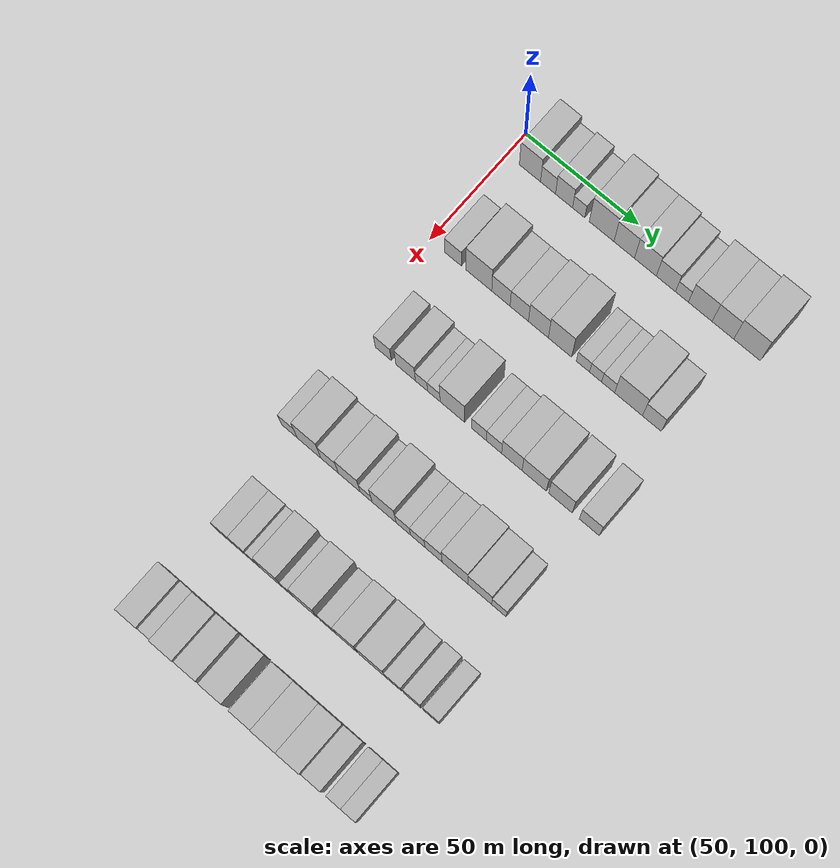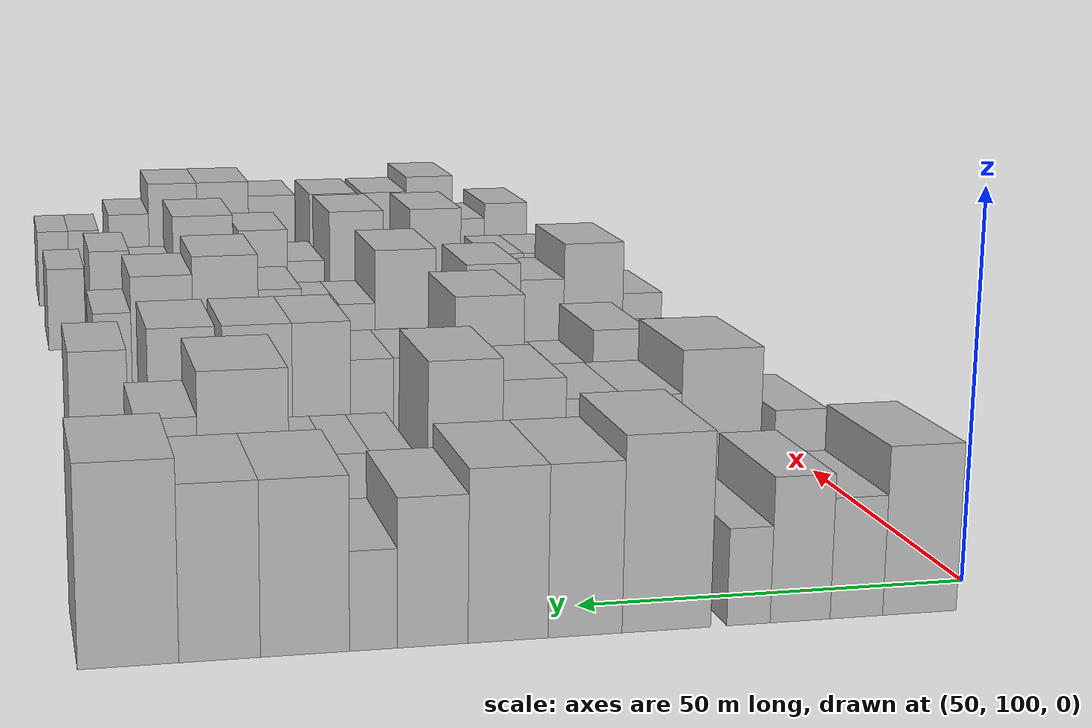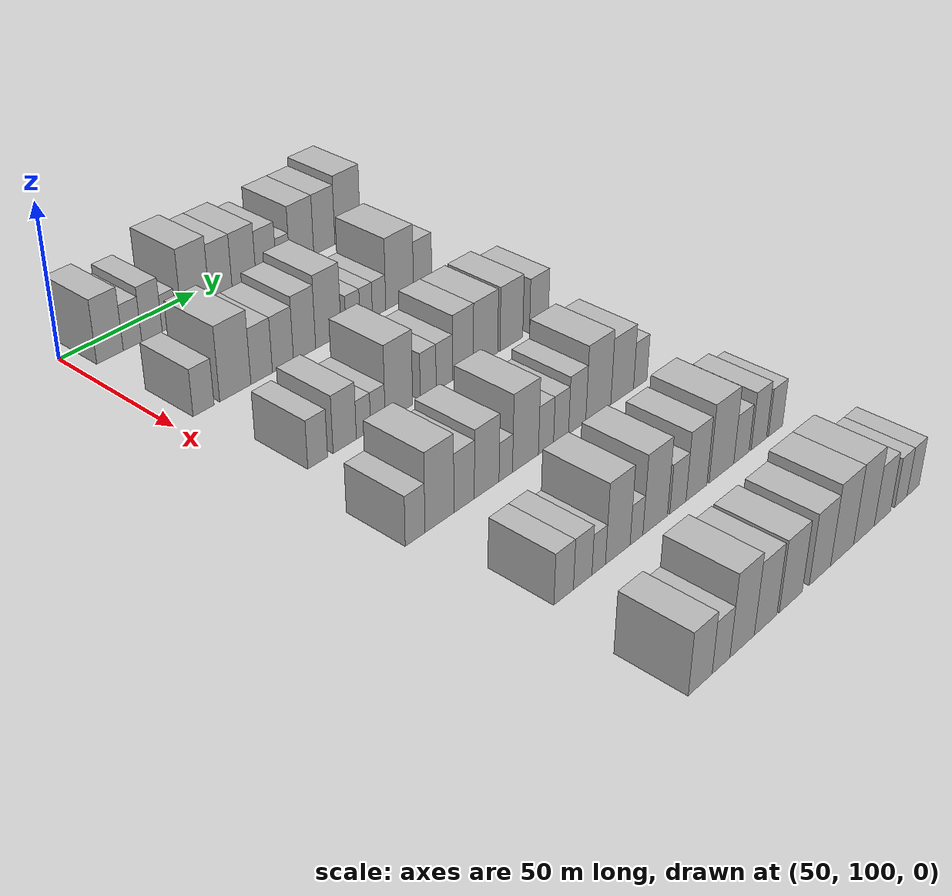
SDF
<sdf version="1.6">
 <world name="default">
  <model name="building_80">
   <static>1</static>
   <pose>50.0000 110.1919 0 0.000000 0.000000 0.000000</pose>
   <link name="link">
    <pose>0 0 10.50 0 0 0</pose>
    <collision name="collision"><geometry><box><size>20.0000 9.4211 21.0000</size></box></geometry></collision>
    <visual name="visual">
     <cast_shadows>0</cast_shadows>
     <geometry><box><size>20.0000 9.4211 21.0000</size></box></geometry>
     <material>
      <script>
       <uri>model://HANNAS_wall/materials/scripts</uri>
       <uri>model://HANNAS_wall/materials/textures</uri>
       <name>vrc/HANNAS_wall</name>
      </script>
     </material>
    </visual>
   </link>
  </model>
  <model name="building_81">
   <static>1</static>
   <pose>50.0000 118.2377 0 0.000000 0.000000 0.000000</pose>
   <link name="link">
    <pose>0 0 7.50 0 0 0</pose>
    <collision name="collision"><geometry><box><size>20.0000 6.6705 15.0000</size></box></geometry></collision>
    <visual name="visual">
     <cast_shadows>0</cast_shadows>
     <geometry><box><size>20.0000 6.6705 15.0000</size></box></geometry>
     <material>
      <script>
       <uri>model://HANNAS_wall/materials/scripts</uri>
       <uri>model://HANNAS_wall/materials/textures</uri>
       <name>vrc/HANNAS_wall</name>
      </script>
     </material>
    </visual>
   </link>
  </model>
  <model name="building_82">
   <static>1</static>
   <pose>50.0000 125.3388 0 0.000000 0.000000 0.000000</pose>
   <link name="link">
    <pose>0 0 9.00 0 0 0</pose>
    <collision name="collision"><geometry><box><size>20.0000 7.5318 18.0000</size></box></geometry></collision>
    <visual name="visual">
     <cast_shadows>0</cast_shadows>
     <geometry><box><size>20.0000 7.5318 18.0000</size></box></geometry>
     <material>
      <script>
       <uri>model://HANNAS_wall/materials/scripts</uri>
       <uri>model://HANNAS_wall/materials/textures</uri>
       <name>vrc/HANNAS_wall</name>
      </script>
     </material>
    </visual>
   </link>
  </model>
  <model name="building_83">
   <static>1</static>
   <pose>50.0000 131.7995 0 0.000000 0.000000 0.000000</pose>
   <link name="link">
    <pose>0 0 6.00 0 0 0</pose>
    <collision name="collision"><geometry><box><size>20.0000 5.3895 12.0000</size></box></geometry></collision>
    <visual name="visual">
     <cast_shadows>0</cast_shadows>
     <geometry><box><size>20.0000 5.3895 12.0000</size></box></geometry>
     <material>
      <script>
       <uri>model://HANNAS_wall/materials/scripts</uri>
       <uri>model://HANNAS_wall/materials/textures</uri>
       <name>vrc/HANNAS_wall</name>
      </script>
     </material>
    </visual>
   </link>
  </model>
  <model name="building_84">
   <static>1</static>
   <pose>50.0000 141.9292 0 0.000000 0.000000 0.000000</pose>
   <link name="link">
    <pose>0 0 12.00 0 0 0</pose>
    <collision name="collision"><geometry><box><size>20.0000 10.8699 24.0000</size></box></geometry></collision>
    <visual name="visual">
     <cast_shadows>0</cast_shadows>
     <geometry><box><size>20.0000 10.8699 24.0000</size></box></geometry>
     <material>
      <script>
       <uri>model://HANNAS_wall/materials/scripts</uri>
       <uri>model://HANNAS_wall/materials/textures</uri>
       <name>vrc/HANNAS_wall</name>
      </script>
     </material>
    </visual>
   </link>
  </model>
  <model name="building_85">
   <static>1</static>
   <pose>50.0000 151.8474 0 0.000000 0.000000 0.000000</pose>
   <link name="link">
    <pose>0 0 10.50 0 0 0</pose>
    <collision name="collision"><geometry><box><size>20.0000 8.9664 21.0000</size></box></geometry></collision>
    <visual name="visual">
     <cast_shadows>0</cast_shadows>
     <geometry><box><size>20.0000 8.9664 21.0000</size></box></geometry>
     <material>
      <script>
       <uri>model://HANNAS_wall/materials/scripts</uri>
       <uri>model://HANNAS_wall/materials/textures</uri>
       <name>vrc/HANNAS_wall</name>
      </script>
     </material>
    </visual>
   </link>
  </model>
  <model name="building_86">
   <static>1</static>
   <pose>50.0000 161.1051 0 0.000000 0.000000 0.000000</pose>
   <link name="link">
    <pose>0 0 10.50 0 0 0</pose>
    <collision name="collision"><geometry><box><size>20.0000 9.5489 21.0000</size></box></geometry></collision>
    <visual name="visual">
     <cast_shadows>0</cast_shadows>
     <geometry><box><size>20.0000 9.5489 21.0000</size></box></geometry>
     <material>
      <script>
       <uri>model://HANNAS_wall/materials/scripts</uri>
       <uri>model://HANNAS_wall/materials/textures</uri>
       <name>vrc/HANNAS_wall</name>
      </script>
     </material>
    </visual>
   </link>
  </model>
  <model name="building_87">
   <static>1</static>
   <pose>50.0000 170.0418 0 0.000000 0.000000 0.000000</pose>
   <link name="link">
    <pose>0 0 9.00 0 0 0</pose>
    <collision name="collision"><geometry><box><size>20.0000 8.3246 18.0000</size></box></geometry></collision>
    <visual name="visual">
     <cast_shadows>0</cast_shadows>
     <geometry><box><size>20.0000 8.3246 18.0000</size></box></geometry>
     <material>
      <script>
       <uri>model://HANNAS_wall/materials/scripts</uri>
       <uri>model://HANNAS_wall/materials/textures</uri>
       <name>vrc/HANNAS_wall</name>
      </script>
     </material>
    </visual>
   </link>
  </model>
  <model name="building_88">
   <static>1</static>
   <pose>50.0000 176.9949 0 0.000000 0.000000 0.000000</pose>
   <link name="link">
    <pose>0 0 6.00 0 0 0</pose>
    <collision name="collision"><geometry><box><size>20.0000 5.5816 12.0000</size></box></geometry></collision>
    <visual name="visual">
     <cast_shadows>0</cast_shadows>
     <geometry><box><size>20.0000 5.5816 12.0000</size></box></geometry>
     <material>
      <script>
       <uri>model://HANNAS_wall/materials/scripts</uri>
       <uri>model://HANNAS_wall/materials/textures</uri>
       <name>vrc/HANNAS_wall</name>
      </script>
     </material>
    </visual>
   </link>
  </model>
  <model name="building_89">
   <static>1</static>
   <pose>50.0000 184.9259 0 0.000000 0.000000 0.000000</pose>
   <link name="link">
    <pose>0 0 10.50 0 0 0</pose>
    <collision name="collision"><geometry><box><size>20.0000 10.2804 21.0000</size></box></geometry></collision>
    <visual name="visual">
     <cast_shadows>0</cast_shadows>
     <geometry><box><size>20.0000 10.2804 21.0000</size></box></geometry>
     <material>
      <script>
       <uri>model://HANNAS_wall/materials/scripts</uri>
       <uri>model://HANNAS_wall/materials/textures</uri>
       <name>vrc/HANNAS_wall</name>
      </script>
     </material>
    </visual>
   </link>
  </model>
  <model name="building_90">
   <static>1</static>
   <pose>50.0000 194.7069 0 0.000000 0.000000 0.000000</pose>
   <link name="link">
    <pose>0 0 10.50 0 0 0</pose>
    <collision name="collision"><geometry><box><size>20.0000 9.2816 21.0000</size></box></geometry></collision>
    <visual name="visual">
     <cast_shadows>0</cast_shadows>
     <geometry><box><size>20.0000 9.2816 21.0000</size></box></geometry>
     <material>
      <script>
       <uri>model://HANNAS_wall/materials/scripts</uri>
       <uri>model://HANNAS_wall/materials/textures</uri>
       <name>vrc/HANNAS_wall</name>
      </script>
     </material>
    </visual>
   </link>
  </model>
  <model name="building_91">
   <static>1</static>
   <pose>50.0000 205.0362 0 0.000000 0.000000 0.000000</pose>
   <link name="link">
    <pose>0 0 12.00 0 0 0</pose>
    <collision name="collision"><geometry><box><size>20.0000 11.3770 24.0000</size></box></geometry></collision>
    <visual name="visual">
     <cast_shadows>0</cast_shadows>
     <geometry><box><size>20.0000 11.3770 24.0000</size></box></geometry>
     <material>
      <script>
       <uri>model://HANNAS_wall/materials/scripts</uri>
       <uri>model://HANNAS_wall/materials/textures</uri>
       <name>vrc/HANNAS_wall</name>
      </script>
     </material>
    </visual>
   </link>
  </model>
  <model name="building_210">
   <static>1</static>
   <pose>90.0000 110.2679 0 0.000000 0.000000 0.000000</pose>
   <link name="link">
    <pose>0 0 7.50 0 0 0</pose>
    <collision name="collision"><geometry><box><size>20.0000 7.4246 15.0000</size></box></geometry></collision>
    <visual name="visual">
     <cast_shadows>0</cast_shadows>
     <geometry><box><size>20.0000 7.4246 15.0000</size></box></geometry>
     <material>
      <script>
       <uri>model://HANNAS_wall/materials/scripts</uri>
       <uri>model://HANNAS_wall/materials/textures</uri>
       <name>vrc/HANNAS_wall</name>
      </script>
     </material>
    </visual>
   </link>
  </model>
  <model name="building_211">
   <static>1</static>
   <pose>90.0000 121.6777 0 0.000000 0.000000 0.000000</pose>
   <link name="link">
    <pose>0 0 12.00 0 0 0</pose>
    <collision name="collision"><geometry><box><size>20.0000 11.3949 24.0000</size></box></geometry></collision>
    <visual name="visual">
     <cast_shadows>0</cast_shadows>
     <geometry><box><size>20.0000 11.3949 24.0000</size></box></geometry>
     <material>
      <script>
       <uri>model://HANNAS_wall/materials/scripts</uri>
       <uri>model://HANNAS_wall/materials/textures</uri>
       <name>vrc/HANNAS_wall</name>
      </script>
     </material>
    </visual>
   </link>
  </model>
  <model name="building_212">
   <static>1</static>
   <pose>90.0000 131.4079 0 0.000000 0.000000 0.000000</pose>
   <link name="link">
    <pose>0 0 9.00 0 0 0</pose>
    <collision name="collision"><geometry><box><size>20.0000 8.0655 18.0000</size></box></geometry></collision>
    <visual name="visual">
     <cast_shadows>0</cast_shadows>
     <geometry><box><size>20.0000 8.0655 18.0000</size></box></geometry>
     <material>
      <script>
       <uri>model://HANNAS_wall/materials/scripts</uri>
       <uri>model://HANNAS_wall/materials/textures</uri>
       <name>vrc/HANNAS_wall</name>
      </script>
     </material>
    </visual>
   </link>
  </model>
  <model name="building_213">
   <static>1</static>
   <pose>90.0000 139.4725 0 0.000000 0.000000 0.000000</pose>
   <link name="link">
    <pose>0 0 9.00 0 0 0</pose>
    <collision name="collision"><geometry><box><size>20.0000 8.0638 18.0000</size></box></geometry></collision>
    <visual name="visual">
     <cast_shadows>0</cast_shadows>
     <geometry><box><size>20.0000 8.0638 18.0000</size></box></geometry>
     <material>
      <script>
       <uri>model://HANNAS_wall/materials/scripts</uri>
       <uri>model://HANNAS_wall/materials/textures</uri>
       <name>vrc/HANNAS_wall</name>
      </script>
     </material>
    </visual>
   </link>
  </model>
  <model name="building_214">
   <static>1</static>
   <pose>90.0000 147.8341 0 0.000000 0.000000 0.000000</pose>
   <link name="link">
    <pose>0 0 10.50 0 0 0</pose>
    <collision name="collision"><geometry><box><size>20.0000 8.6593 21.0000</size></box></geometry></collision>
    <visual name="visual">
     <cast_shadows>0</cast_shadows>
     <geometry><box><size>20.0000 8.6593 21.0000</size></box></geometry>
     <material>
      <script>
       <uri>model://HANNAS_wall/materials/scripts</uri>
       <uri>model://HANNAS_wall/materials/textures</uri>
       <name>vrc/HANNAS_wall</name>
      </script>
     </material>
    </visual>
   </link>
  </model>
  <model name="building_215">
   <static>1</static>
   <pose>90.0000 157.2550 0 0.000000 0.000000 0.000000</pose>
   <link name="link">
    <pose>0 0 12.00 0 0 0</pose>
    <collision name="collision"><geometry><box><size>20.0000 10.1827 24.0000</size></box></geometry></collision>
    <visual name="visual">
     <cast_shadows>0</cast_shadows>
     <geometry><box><size>20.0000 10.1827 24.0000</size></box></geometry>
     <material>
      <script>
       <uri>model://HANNAS_wall/materials/scripts</uri>
       <uri>model://HANNAS_wall/materials/textures</uri>
       <name>vrc/HANNAS_wall</name>
      </script>
     </material>
    </visual>
   </link>
  </model>
  <model name="building_216">
   <static>1</static>
   <pose>90.0000 167.2280 0 0.000000 0.000000 0.000000</pose>
   <link name="link">
    <pose>0 0 6.00 0 0 0</pose>
    <collision name="collision"><geometry><box><size>20.0000 5.7632 12.0000</size></box></geometry></collision>
    <visual name="visual">
     <cast_shadows>0</cast_shadows>
     <geometry><box><size>20.0000 5.7632 12.0000</size></box></geometry>
     <material>
      <script>
       <uri>model://HANNAS_wall/materials/scripts</uri>
       <uri>model://HANNAS_wall/materials/textures</uri>
       <name>vrc/HANNAS_wall</name>
      </script>
     </material>
    </visual>
   </link>
  </model>
  <model name="building_217">
   <static>1</static>
   <pose>90.0000 172.7026 0 0.000000 0.000000 0.000000</pose>
   <link name="link">
    <pose>0 0 6.00 0 0 0</pose>
    <collision name="collision"><geometry><box><size>20.0000 5.1862 12.0000</size></box></geometry></collision>
    <visual name="visual">
     <cast_shadows>0</cast_shadows>
     <geometry><box><size>20.0000 5.1862 12.0000</size></box></geometry>
     <material>
      <script>
       <uri>model://HANNAS_wall/materials/scripts</uri>
       <uri>model://HANNAS_wall/materials/textures</uri>
       <name>vrc/HANNAS_wall</name>
      </script>
     </material>
    </visual>
   </link>
  </model>
  <model name="building_218">
   <static>1</static>
   <pose>90.0000 178.1284 0 0.000000 0.000000 0.000000</pose>
   <link name="link">
    <pose>0 0 6.00 0 0 0</pose>
    <collision name="collision"><geometry><box><size>20.0000 5.6655 12.0000</size></box></geometry></collision>
    <visual name="visual">
     <cast_shadows>0</cast_shadows>
     <geometry><box><size>20.0000 5.6655 12.0000</size></box></geometry>
     <material>
      <script>
       <uri>model://HANNAS_wall/materials/scripts</uri>
       <uri>model://HANNAS_wall/materials/textures</uri>
       <name>vrc/HANNAS_wall</name>
      </script>
     </material>
    </visual>
   </link>
  </model>
  <model name="building_219">
   <static>1</static>
   <pose>90.0000 186.9507 0 0.000000 0.000000 0.000000</pose>
   <link name="link">
    <pose>0 0 12.00 0 0 0</pose>
    <collision name="collision"><geometry><box><size>20.0000 11.9791 24.0000</size></box></geometry></collision>
    <visual name="visual">
     <cast_shadows>0</cast_shadows>
     <geometry><box><size>20.0000 11.9791 24.0000</size></box></geometry>
     <material>
      <script>
       <uri>model://HANNAS_wall/materials/scripts</uri>
       <uri>model://HANNAS_wall/materials/textures</uri>
       <name>vrc/HANNAS_wall</name>
      </script>
     </material>
    </visual>
   </link>
  </model>
  <model name="building_220">
   <static>1</static>
   <pose>90.0000 196.9672 0 0.000000 0.000000 0.000000</pose>
   <link name="link">
    <pose>0 0 9.00 0 0 0</pose>
    <collision name="collision"><geometry><box><size>20.0000 8.0538 18.0000</size></box></geometry></collision>
    <visual name="visual">
     <cast_shadows>0</cast_shadows>
     <geometry><box><size>20.0000 8.0538 18.0000</size></box></geometry>
     <material>
      <script>
       <uri>model://HANNAS_wall/materials/scripts</uri>
       <uri>model://HANNAS_wall/materials/textures</uri>
       <name>vrc/HANNAS_wall</name>
      </script>
     </material>
    </visual>
   </link>
  </model>
  <model name="building_352">
   <static>1</static>
   <pose>130.0000 114.1567 0 0.000000 0.000000 0.000000</pose>
   <link name="link">
    <pose>0 0 7.50 0 0 0</pose>
    <collision name="collision"><geometry><box><size>20.0000 7.0765 15.0000</size></box></geometry></collision>
    <visual name="visual">
     <cast_shadows>0</cast_shadows>
     <geometry><box><size>20.0000 7.0765 15.0000</size></box></geometry>
     <material>
      <script>
       <uri>model://HANNAS_wall/materials/scripts</uri>
       <uri>model://HANNAS_wall/materials/textures</uri>
       <name>vrc/HANNAS_wall</name>
      </script>
     </material>
    </visual>
   </link>
  </model>
  <model name="building_353">
   <static>1</static>
   <pose>130.0000 123.9784 0 0.000000 0.000000 0.000000</pose>
   <link name="link">
    <pose>0 0 9.00 0 0 0</pose>
    <collision name="collision"><geometry><box><size>20.0000 8.5667 18.0000</size></box></geometry></collision>
    <visual name="visual">
     <cast_shadows>0</cast_shadows>
     <geometry><box><size>20.0000 8.5667 18.0000</size></box></geometry>
     <material>
      <script>
       <uri>model://HANNAS_wall/materials/scripts</uri>
       <uri>model://HANNAS_wall/materials/textures</uri>
       <name>vrc/HANNAS_wall</name>
      </script>
     </material>
    </visual>
   </link>
  </model>
  <model name="building_354">
   <static>1</static>
   <pose>130.0000 130.9368 0 0.000000 0.000000 0.000000</pose>
   <link name="link">
    <pose>0 0 6.00 0 0 0</pose>
    <collision name="collision"><geometry><box><size>20.0000 5.3502 12.0000</size></box></geometry></collision>
    <visual name="visual">
     <cast_shadows>0</cast_shadows>
     <geometry><box><size>20.0000 5.3502 12.0000</size></box></geometry>
     <material>
      <script>
       <uri>model://HANNAS_wall/materials/scripts</uri>
       <uri>model://HANNAS_wall/materials/textures</uri>
       <name>vrc/HANNAS_wall</name>
      </script>
     </material>
    </visual>
   </link>
  </model>
  <model name="building_355">
   <static>1</static>
   <pose>130.0000 136.3821 0 0.000000 0.000000 0.000000</pose>
   <link name="link">
    <pose>0 0 6.00 0 0 0</pose>
    <collision name="collision"><geometry><box><size>20.0000 5.5404 12.0000</size></box></geometry></collision>
    <visual name="visual">
     <cast_shadows>0</cast_shadows>
     <geometry><box><size>20.0000 5.5404 12.0000</size></box></geometry>
     <material>
      <script>
       <uri>model://HANNAS_wall/materials/scripts</uri>
       <uri>model://HANNAS_wall/materials/textures</uri>
       <name>vrc/HANNAS_wall</name>
      </script>
     </material>
    </visual>
   </link>
  </model>
  <model name="building_356">
   <static>1</static>
   <pose>130.0000 144.5022 0 0.000000 0.000000 0.000000</pose>
   <link name="link">
    <pose>0 0 12.00 0 0 0</pose>
    <collision name="collision"><geometry><box><size>20.0000 10.6997 24.0000</size></box></geometry></collision>
    <visual name="visual">
     <cast_shadows>0</cast_shadows>
     <geometry><box><size>20.0000 10.6997 24.0000</size></box></geometry>
     <material>
      <script>
       <uri>model://HANNAS_wall/materials/scripts</uri>
       <uri>model://HANNAS_wall/materials/textures</uri>
       <name>vrc/HANNAS_wall</name>
      </script>
     </material>
    </visual>
   </link>
  </model>
  <model name="building_357">
   <static>1</static>
   <pose>130.0000 156.0625 0 0.000000 0.000000 0.000000</pose>
   <link name="link">
    <pose>0 0 7.50 0 0 0</pose>
    <collision name="collision"><geometry><box><size>20.0000 6.4210 15.0000</size></box></geometry></collision>
    <visual name="visual">
     <cast_shadows>0</cast_shadows>
     <geometry><box><size>20.0000 6.4210 15.0000</size></box></geometry>
     <material>
      <script>
       <uri>model://HANNAS_wall/materials/scripts</uri>
       <uri>model://HANNAS_wall/materials/textures</uri>
       <name>vrc/HANNAS_wall</name>
      </script>
     </material>
    </visual>
   </link>
  </model>
  <model name="building_358">
   <static>1</static>
   <pose>130.0000 162.5771 0 0.000000 0.000000 0.000000</pose>
   <link name="link">
    <pose>0 0 7.50 0 0 0</pose>
    <collision name="collision"><geometry><box><size>20.0000 6.6081 15.0000</size></box></geometry></collision>
    <visual name="visual">
     <cast_shadows>0</cast_shadows>
     <geometry><box><size>20.0000 6.6081 15.0000</size></box></geometry>
     <material>
      <script>
       <uri>model://HANNAS_wall/materials/scripts</uri>
       <uri>model://HANNAS_wall/materials/textures</uri>
       <name>vrc/HANNAS_wall</name>
      </script>
     </material>
    </visual>
   </link>
  </model>
  <model name="building_359">
   <static>1</static>
   <pose>130.0000 170.2885 0 0.000000 0.000000 0.000000</pose>
   <link name="link">
    <pose>0 0 10.50 0 0 0</pose>
    <collision name="collision"><geometry><box><size>20.0000 8.8147 21.0000</size></box></geometry></collision>
    <visual name="visual">
     <cast_shadows>0</cast_shadows>
     <geometry><box><size>20.0000 8.8147 21.0000</size></box></geometry>
     <material>
      <script>
       <uri>model://HANNAS_wall/materials/scripts</uri>
       <uri>model://HANNAS_wall/materials/textures</uri>
       <name>vrc/HANNAS_wall</name>
      </script>
     </material>
    </visual>
   </link>
  </model>
  <model name="building_360">
   <static>1</static>
   <pose>130.0000 179.9246 0 0.000000 0.000000 0.000000</pose>
   <link name="link">
    <pose>0 0 10.50 0 0 0</pose>
    <collision name="collision"><geometry><box><size>20.0000 10.4574 21.0000</size></box></geometry></collision>
    <visual name="visual">
     <cast_shadows>0</cast_shadows>
     <geometry><box><size>20.0000 10.4574 21.0000</size></box></geometry>
     <material>
      <script>
       <uri>model://HANNAS_wall/materials/scripts</uri>
       <uri>model://HANNAS_wall/materials/textures</uri>
       <name>vrc/HANNAS_wall</name>
      </script>
     </material>
    </visual>
   </link>
  </model>
  <model name="building_361">
   <static>1</static>
   <pose>130.0000 191.1960 0 0.000000 0.000000 0.000000</pose>
   <link name="link">
    <pose>0 0 10.50 0 0 0</pose>
    <collision name="collision"><geometry><box><size>20.0000 10.0855 21.0000</size></box></geometry></collision>
    <visual name="visual">
     <cast_shadows>0</cast_shadows>
     <geometry><box><size>20.0000 10.0855 21.0000</size></box></geometry>
     <material>
      <script>
       <uri>model://HANNAS_wall/materials/scripts</uri>
       <uri>model://HANNAS_wall/materials/textures</uri>
       <name>vrc/HANNAS_wall</name>
      </script>
     </material>
    </visual>
   </link>
  </model>
  <model name="building_362">
   <static>1</static>
   <pose>130.0000 203.5257 0 0.000000 0.000000 0.000000</pose>
   <link name="link">
    <pose>0 0 9.00 0 0 0</pose>
    <collision name="collision"><geometry><box><size>20.0000 8.5740 18.0000</size></box></geometry></collision>
    <visual name="visual">
     <cast_shadows>0</cast_shadows>
     <geometry><box><size>20.0000 8.5740 18.0000</size></box></geometry>
     <material>
      <script>
       <uri>model://HANNAS_wall/materials/scripts</uri>
       <uri>model://HANNAS_wall/materials/textures</uri>
       <name>vrc/HANNAS_wall</name>
      </script>
     </material>
    </visual>
   </link>
  </model>
  <model name="building_487">
   <static>1</static>
   <pose>170.0000 108.0232 0 0.000000 0.000000 0.000000</pose>
   <link name="link">
    <pose>0 0 7.50 0 0 0</pose>
    <collision name="collision"><geometry><box><size>20.0000 6.9526 15.0000</size></box></geometry></collision>
    <visual name="visual">
     <cast_shadows>0</cast_shadows>
     <geometry><box><size>20.0000 6.9526 15.0000</size></box></geometry>
     <material>
      <script>
       <uri>model://HANNAS_wall/materials/scripts</uri>
       <uri>model://HANNAS_wall/materials/textures</uri>
       <name>vrc/HANNAS_wall</name>
      </script>
     </material>
    </visual>
   </link>
  </model>
  <model name="building_488">
   <static>1</static>
   <pose>170.0000 116.7342 0 0.000000 0.000000 0.000000</pose>
   <link name="link">
    <pose>0 0 12.00 0 0 0</pose>
    <collision name="collision"><geometry><box><size>20.0000 10.4694 24.0000</size></box></geometry></collision>
    <visual name="visual">
     <cast_shadows>0</cast_shadows>
     <geometry><box><size>20.0000 10.4694 24.0000</size></box></geometry>
     <material>
      <script>
       <uri>model://HANNAS_wall/materials/scripts</uri>
       <uri>model://HANNAS_wall/materials/textures</uri>
       <name>vrc/HANNAS_wall</name>
      </script>
     </material>
    </visual>
   </link>
  </model>
  <model name="building_489">
   <static>1</static>
   <pose>170.0000 125.7995 0 0.000000 0.000000 0.000000</pose>
   <link name="link">
    <pose>0 0 9.00 0 0 0</pose>
    <collision name="collision"><geometry><box><size>20.0000 7.6612 18.0000</size></box></geometry></collision>
    <visual name="visual">
     <cast_shadows>0</cast_shadows>
     <geometry><box><size>20.0000 7.6612 18.0000</size></box></geometry>
     <material>
      <script>
       <uri>model://HANNAS_wall/materials/scripts</uri>
       <uri>model://HANNAS_wall/materials/textures</uri>
       <name>vrc/HANNAS_wall</name>
      </script>
     </material>
    </visual>
   </link>
  </model>
  <model name="building_490">
   <static>1</static>
   <pose>170.0000 134.3663 0 0.000000 0.000000 0.000000</pose>
   <link name="link">
    <pose>0 0 10.50 0 0 0</pose>
    <collision name="collision"><geometry><box><size>20.0000 9.4724 21.0000</size></box></geometry></collision>
    <visual name="visual">
     <cast_shadows>0</cast_shadows>
     <geometry><box><size>20.0000 9.4724 21.0000</size></box></geometry>
     <material>
      <script>
       <uri>model://HANNAS_wall/materials/scripts</uri>
       <uri>model://HANNAS_wall/materials/textures</uri>
       <name>vrc/HANNAS_wall</name>
      </script>
     </material>
    </visual>
   </link>
  </model>
  <model name="building_491">
   <static>1</static>
   <pose>170.0000 141.7454 0 0.000000 0.000000 0.000000</pose>
   <link name="link">
    <pose>0 0 6.00 0 0 0</pose>
    <collision name="collision"><geometry><box><size>20.0000 5.2858 12.0000</size></box></geometry></collision>
    <visual name="visual">
     <cast_shadows>0</cast_shadows>
     <geometry><box><size>20.0000 5.2858 12.0000</size></box></geometry>
     <material>
      <script>
       <uri>model://HANNAS_wall/materials/scripts</uri>
       <uri>model://HANNAS_wall/materials/textures</uri>
       <name>vrc/HANNAS_wall</name>
      </script>
     </material>
    </visual>
   </link>
  </model>
  <model name="building_492">
   <static>1</static>
   <pose>170.0000 149.5778 0 0.000000 0.000000 0.000000</pose>
   <link name="link">
    <pose>0 0 12.00 0 0 0</pose>
    <collision name="collision"><geometry><box><size>20.0000 10.3790 24.0000</size></box></geometry></collision>
    <visual name="visual">
     <cast_shadows>0</cast_shadows>
     <geometry><box><size>20.0000 10.3790 24.0000</size></box></geometry>
     <material>
      <script>
       <uri>model://HANNAS_wall/materials/scripts</uri>
       <uri>model://HANNAS_wall/materials/textures</uri>
       <name>vrc/HANNAS_wall</name>
      </script>
     </material>
    </visual>
   </link>
  </model>
  <model name="building_493">
   <static>1</static>
   <pose>170.0000 157.8700 0 0.000000 0.000000 0.000000</pose>
   <link name="link">
    <pose>0 0 7.50 0 0 0</pose>
    <collision name="collision"><geometry><box><size>20.0000 6.2055 15.0000</size></box></geometry></collision>
    <visual name="visual">
     <cast_shadows>0</cast_shadows>
     <geometry><box><size>20.0000 6.2055 15.0000</size></box></geometry>
     <material>
      <script>
       <uri>model://HANNAS_wall/materials/scripts</uri>
       <uri>model://HANNAS_wall/materials/textures</uri>
       <name>vrc/HANNAS_wall</name>
      </script>
     </material>
    </visual>
   </link>
  </model>
  <model name="building_494">
   <static>1</static>
   <pose>170.0000 164.1206 0 0.000000 0.000000 0.000000</pose>
   <link name="link">
    <pose>0 0 7.50 0 0 0</pose>
    <collision name="collision"><geometry><box><size>20.0000 6.2956 15.0000</size></box></geometry></collision>
    <visual name="visual">
     <cast_shadows>0</cast_shadows>
     <geometry><box><size>20.0000 6.2956 15.0000</size></box></geometry>
     <material>
      <script>
       <uri>model://HANNAS_wall/materials/scripts</uri>
       <uri>model://HANNAS_wall/materials/textures</uri>
       <name>vrc/HANNAS_wall</name>
      </script>
     </material>
    </visual>
   </link>
  </model>
  <model name="building_495">
   <static>1</static>
   <pose>170.0000 170.9346 0 0.000000 0.000000 0.000000</pose>
   <link name="link">
    <pose>0 0 9.00 0 0 0</pose>
    <collision name="collision"><geometry><box><size>20.0000 7.3326 18.0000</size></box></geometry></collision>
    <visual name="visual">
     <cast_shadows>0</cast_shadows>
     <geometry><box><size>20.0000 7.3326 18.0000</size></box></geometry>
     <material>
      <script>
       <uri>model://HANNAS_wall/materials/scripts</uri>
       <uri>model://HANNAS_wall/materials/textures</uri>
       <name>vrc/HANNAS_wall</name>
      </script>
     </material>
    </visual>
   </link>
  </model>
  <model name="building_496">
   <static>1</static>
   <pose>170.0000 180.0778 0 0.000000 0.000000 0.000000</pose>
   <link name="link">
    <pose>0 0 12.00 0 0 0</pose>
    <collision name="collision"><geometry><box><size>20.0000 10.9537 24.0000</size></box></geometry></collision>
    <visual name="visual">
     <cast_shadows>0</cast_shadows>
     <geometry><box><size>20.0000 10.9537 24.0000</size></box></geometry>
     <material>
      <script>
       <uri>model://HANNAS_wall/materials/scripts</uri>
       <uri>model://HANNAS_wall/materials/textures</uri>
       <name>vrc/HANNAS_wall</name>
      </script>
     </material>
    </visual>
   </link>
  </model>
  <model name="building_497">
   <static>1</static>
   <pose>170.0000 190.6676 0 0.000000 0.000000 0.000000</pose>
   <link name="link">
    <pose>0 0 10.50 0 0 0</pose>
    <collision name="collision"><geometry><box><size>20.0000 10.2257 21.0000</size></box></geometry></collision>
    <visual name="visual">
     <cast_shadows>0</cast_shadows>
     <geometry><box><size>20.0000 10.2257 21.0000</size></box></geometry>
     <material>
      <script>
       <uri>model://HANNAS_wall/materials/scripts</uri>
       <uri>model://HANNAS_wall/materials/textures</uri>
       <name>vrc/HANNAS_wall</name>
      </script>
     </material>
    </visual>
   </link>
  </model>
  <model name="building_498">
   <static>1</static>
   <pose>170.0000 198.8834 0 0.000000 0.000000 0.000000</pose>
   <link name="link">
    <pose>0 0 7.50 0 0 0</pose>
    <collision name="collision"><geometry><box><size>20.0000 6.2059 15.0000</size></box></geometry></collision>
    <visual name="visual">
     <cast_shadows>0</cast_shadows>
     <geometry><box><size>20.0000 6.2059 15.0000</size></box></geometry>
     <material>
      <script>
       <uri>model://HANNAS_wall/materials/scripts</uri>
       <uri>model://HANNAS_wall/materials/textures</uri>
       <name>vrc/HANNAS_wall</name>
      </script>
     </material>
    </visual>
   </link>
  </model>
  <model name="building_632">
   <static>1</static>
   <pose>210.0000 115.3934 0 0.000000 0.000000 0.000000</pose>
   <link name="link">
    <pose>0 0 7.50 0 0 0</pose>
    <collision name="collision"><geometry><box><size>20.0000 7.1755 15.0000</size></box></geometry></collision>
    <visual name="visual">
     <cast_shadows>0</cast_shadows>
     <geometry><box><size>20.0000 7.1755 15.0000</size></box></geometry>
     <material>
      <script>
       <uri>model://HANNAS_wall/materials/scripts</uri>
       <uri>model://HANNAS_wall/materials/textures</uri>
       <name>vrc/HANNAS_wall</name>
      </script>
     </material>
    </visual>
   </link>
  </model>
  <model name="building_633">
   <static>1</static>
   <pose>210.0000 122.4685 0 0.000000 0.000000 0.000000</pose>
   <link name="link">
    <pose>0 0 7.50 0 0 0</pose>
    <collision name="collision"><geometry><box><size>20.0000 6.9748 15.0000</size></box></geometry></collision>
    <visual name="visual">
     <cast_shadows>0</cast_shadows>
     <geometry><box><size>20.0000 6.9748 15.0000</size></box></geometry>
     <material>
      <script>
       <uri>model://HANNAS_wall/materials/scripts</uri>
       <uri>model://HANNAS_wall/materials/textures</uri>
       <name>vrc/HANNAS_wall</name>
      </script>
     </material>
    </visual>
   </link>
  </model>
  <model name="building_634">
   <static>1</static>
   <pose>210.0000 128.5463 0 0.000000 0.000000 0.000000</pose>
   <link name="link">
    <pose>0 0 6.00 0 0 0</pose>
    <collision name="collision"><geometry><box><size>20.0000 5.1807 12.0000</size></box></geometry></collision>
    <visual name="visual">
     <cast_shadows>0</cast_shadows>
     <geometry><box><size>20.0000 5.1807 12.0000</size></box></geometry>
     <material>
      <script>
       <uri>model://HANNAS_wall/materials/scripts</uri>
       <uri>model://HANNAS_wall/materials/textures</uri>
       <name>vrc/HANNAS_wall</name>
      </script>
     </material>
    </visual>
   </link>
  </model>
  <model name="building_635">
   <static>1</static>
   <pose>210.0000 135.9845 0 0.000000 0.000000 0.000000</pose>
   <link name="link">
    <pose>0 0 12.00 0 0 0</pose>
    <collision name="collision"><geometry><box><size>20.0000 9.6956 24.0000</size></box></geometry></collision>
    <visual name="visual">
     <cast_shadows>0</cast_shadows>
     <geometry><box><size>20.0000 9.6956 24.0000</size></box></geometry>
     <material>
      <script>
       <uri>model://HANNAS_wall/materials/scripts</uri>
       <uri>model://HANNAS_wall/materials/textures</uri>
       <name>vrc/HANNAS_wall</name>
      </script>
     </material>
    </visual>
   </link>
  </model>
  <model name="building_636">
   <static>1</static>
   <pose>210.0000 143.4125 0 0.000000 0.000000 0.000000</pose>
   <link name="link">
    <pose>0 0 6.00 0 0 0</pose>
    <collision name="collision"><geometry><box><size>20.0000 5.1604 12.0000</size></box></geometry></collision>
    <visual name="visual">
     <cast_shadows>0</cast_shadows>
     <geometry><box><size>20.0000 5.1604 12.0000</size></box></geometry>
     <material>
      <script>
       <uri>model://HANNAS_wall/materials/scripts</uri>
       <uri>model://HANNAS_wall/materials/textures</uri>
       <name>vrc/HANNAS_wall</name>
      </script>
     </material>
    </visual>
   </link>
  </model>
  <model name="building_637">
   <static>1</static>
   <pose>210.0000 151.0412 0 0.000000 0.000000 0.000000</pose>
   <link name="link">
    <pose>0 0 12.00 0 0 0</pose>
    <collision name="collision"><geometry><box><size>20.0000 10.0972 24.0000</size></box></geometry></collision>
    <visual name="visual">
     <cast_shadows>0</cast_shadows>
     <geometry><box><size>20.0000 10.0972 24.0000</size></box></geometry>
     <material>
      <script>
       <uri>model://HANNAS_wall/materials/scripts</uri>
       <uri>model://HANNAS_wall/materials/textures</uri>
       <name>vrc/HANNAS_wall</name>
      </script>
     </material>
    </visual>
   </link>
  </model>
  <model name="building_638">
   <static>1</static>
   <pose>210.0000 160.5370 0 0.000000 0.000000 0.000000</pose>
   <link name="link">
    <pose>0 0 7.50 0 0 0</pose>
    <collision name="collision"><geometry><box><size>20.0000 6.8943 15.0000</size></box></geometry></collision>
    <visual name="visual">
     <cast_shadows>0</cast_shadows>
     <geometry><box><size>20.0000 6.8943 15.0000</size></box></geometry>
     <material>
      <script>
       <uri>model://HANNAS_wall/materials/scripts</uri>
       <uri>model://HANNAS_wall/materials/textures</uri>
       <name>vrc/HANNAS_wall</name>
      </script>
     </material>
    </visual>
   </link>
  </model>
  <model name="building_639">
   <static>1</static>
   <pose>210.0000 168.5193 0 0.000000 0.000000 0.000000</pose>
   <link name="link">
    <pose>0 0 10.50 0 0 0</pose>
    <collision name="collision"><geometry><box><size>20.0000 9.0704 21.0000</size></box></geometry></collision>
    <visual name="visual">
     <cast_shadows>0</cast_shadows>
     <geometry><box><size>20.0000 9.0704 21.0000</size></box></geometry>
     <material>
      <script>
       <uri>model://HANNAS_wall/materials/scripts</uri>
       <uri>model://HANNAS_wall/materials/textures</uri>
       <name>vrc/HANNAS_wall</name>
      </script>
     </material>
    </visual>
   </link>
  </model>
  <model name="building_640">
   <static>1</static>
   <pose>210.0000 179.5872 0 0.000000 0.000000 0.000000</pose>
   <link name="link">
    <pose>0 0 12.00 0 0 0</pose>
    <collision name="collision"><geometry><box><size>20.0000 11.0653 24.0000</size></box></geometry></collision>
    <visual name="visual">
     <cast_shadows>0</cast_shadows>
     <geometry><box><size>20.0000 11.0653 24.0000</size></box></geometry>
     <material>
      <script>
       <uri>model://HANNAS_wall/materials/scripts</uri>
       <uri>model://HANNAS_wall/materials/textures</uri>
       <name>vrc/HANNAS_wall</name>
      </script>
     </material>
    </visual>
   </link>
  </model>
  <model name="building_641">
   <static>1</static>
   <pose>210.0000 188.6377 0 0.000000 0.000000 0.000000</pose>
   <link name="link">
    <pose>0 0 7.50 0 0 0</pose>
    <collision name="collision"><geometry><box><size>20.0000 7.0358 15.0000</size></box></geometry></collision>
    <visual name="visual">
     <cast_shadows>0</cast_shadows>
     <geometry><box><size>20.0000 7.0358 15.0000</size></box></geometry>
     <material>
      <script>
       <uri>model://HANNAS_wall/materials/scripts</uri>
       <uri>model://HANNAS_wall/materials/textures</uri>
       <name>vrc/HANNAS_wall</name>
      </script>
     </material>
    </visual>
   </link>
  </model>
  <model name="building_642">
   <static>1</static>
   <pose>210.0000 196.7728 0 0.000000 0.000000 0.000000</pose>
   <link name="link">
    <pose>0 0 9.00 0 0 0</pose>
    <collision name="collision"><geometry><box><size>20.0000 7.2344 18.0000</size></box></geometry></collision>
    <visual name="visual">
     <cast_shadows>0</cast_shadows>
     <geometry><box><size>20.0000 7.2344 18.0000</size></box></geometry>
     <material>
      <script>
       <uri>model://HANNAS_wall/materials/scripts</uri>
       <uri>model://HANNAS_wall/materials/textures</uri>
       <name>vrc/HANNAS_wall</name>
      </script>
     </material>
    </visual>
   </link>
  </model>
  <model name="building_643">
   <static>1</static>
   <pose>210.0000 204.7605 0 0.000000 0.000000 0.000000</pose>
   <link name="link">
    <pose>0 0 7.50 0 0 0</pose>
    <collision name="collision"><geometry><box><size>20.0000 6.7410 15.0000</size></box></geometry></collision>
    <visual name="visual">
     <cast_shadows>0</cast_shadows>
     <geometry><box><size>20.0000 6.7410 15.0000</size></box></geometry>
     <material>
      <script>
       <uri>model://HANNAS_wall/materials/scripts</uri>
       <uri>model://HANNAS_wall/materials/textures</uri>
       <name>vrc/HANNAS_wall</name>
      </script>
     </material>
    </visual>
   </link>
  </model>
  <model name="building_769">
   <static>1</static>
   <pose>250.0000 112.6623 0 0.000000 0.000000 0.000000</pose>
   <link name="link">
    <pose>0 0 9.00 0 0 0</pose>
    <collision name="collision"><geometry><box><size>20.0000 8.9631 18.0000</size></box></geometry></collision>
    <visual name="visual">
     <cast_shadows>0</cast_shadows>
     <geometry><box><size>20.0000 8.9631 18.0000</size></box></geometry>
     <material>
      <script>
       <uri>model://HANNAS_wall/materials/scripts</uri>
       <uri>model://HANNAS_wall/materials/textures</uri>
       <name>vrc/HANNAS_wall</name>
      </script>
     </material>
    </visual>
   </link>
  </model>
  <model name="building_770">
   <static>1</static>
   <pose>250.0000 120.5738 0 0.000000 0.000000 0.000000</pose>
   <link name="link">
    <pose>0 0 7.50 0 0 0</pose>
    <collision name="collision"><geometry><box><size>20.0000 6.8600 15.0000</size></box></geometry></collision>
    <visual name="visual">
     <cast_shadows>0</cast_shadows>
     <geometry><box><size>20.0000 6.8600 15.0000</size></box></geometry>
     <material>
      <script>
       <uri>model://HANNAS_wall/materials/scripts</uri>
       <uri>model://HANNAS_wall/materials/textures</uri>
       <name>vrc/HANNAS_wall</name>
      </script>
     </material>
    </visual>
   </link>
  </model>
  <model name="building_771">
   <static>1</static>
   <pose>250.0000 128.8526 0 0.000000 0.000000 0.000000</pose>
   <link name="link">
    <pose>0 0 12.00 0 0 0</pose>
    <collision name="collision"><geometry><box><size>20.0000 9.6976 24.0000</size></box></geometry></collision>
    <visual name="visual">
     <cast_shadows>0</cast_shadows>
     <geometry><box><size>20.0000 9.6976 24.0000</size></box></geometry>
     <material>
      <script>
       <uri>model://HANNAS_wall/materials/scripts</uri>
       <uri>model://HANNAS_wall/materials/textures</uri>
       <name>vrc/HANNAS_wall</name>
      </script>
     </material>
    </visual>
   </link>
  </model>
  <model name="building_772">
   <static>1</static>
   <pose>250.0000 138.3419 0 0.000000 0.000000 0.000000</pose>
   <link name="link">
    <pose>0 0 10.50 0 0 0</pose>
    <collision name="collision"><geometry><box><size>20.0000 9.2811 21.0000</size></box></geometry></collision>
    <visual name="visual">
     <cast_shadows>0</cast_shadows>
     <geometry><box><size>20.0000 9.2811 21.0000</size></box></geometry>
     <material>
      <script>
       <uri>model://HANNAS_wall/materials/scripts</uri>
       <uri>model://HANNAS_wall/materials/textures</uri>
       <name>vrc/HANNAS_wall</name>
      </script>
     </material>
    </visual>
   </link>
  </model>
  <model name="building_773">
   <static>1</static>
   <pose>250.0000 148.8646 0 0.000000 0.000000 0.000000</pose>
   <link name="link">
    <pose>0 0 10.50 0 0 0</pose>
    <collision name="collision"><geometry><box><size>20.0000 9.7642 21.0000</size></box></geometry></collision>
    <visual name="visual">
     <cast_shadows>0</cast_shadows>
     <geometry><box><size>20.0000 9.7642 21.0000</size></box></geometry>
     <material>
      <script>
       <uri>model://HANNAS_wall/materials/scripts</uri>
       <uri>model://HANNAS_wall/materials/textures</uri>
       <name>vrc/HANNAS_wall</name>
      </script>
     </material>
    </visual>
   </link>
  </model>
  <model name="building_774">
   <static>1</static>
   <pose>250.0000 161.4831 0 0.000000 0.000000 0.000000</pose>
   <link name="link">
    <pose>0 0 10.50 0 0 0</pose>
    <collision name="collision"><geometry><box><size>20.0000 9.4729 21.0000</size></box></geometry></collision>
    <visual name="visual">
     <cast_shadows>0</cast_shadows>
     <geometry><box><size>20.0000 9.4729 21.0000</size></box></geometry>
     <material>
      <script>
       <uri>model://HANNAS_wall/materials/scripts</uri>
       <uri>model://HANNAS_wall/materials/textures</uri>
       <name>vrc/HANNAS_wall</name>
      </script>
     </material>
    </visual>
   </link>
  </model>
  <model name="building_775">
   <static>1</static>
   <pose>250.0000 171.4436 0 0.000000 0.000000 0.000000</pose>
   <link name="link">
    <pose>0 0 12.00 0 0 0</pose>
    <collision name="collision"><geometry><box><size>20.0000 10.4481 24.0000</size></box></geometry></collision>
    <visual name="visual">
     <cast_shadows>0</cast_shadows>
     <geometry><box><size>20.0000 10.4481 24.0000</size></box></geometry>
     <material>
      <script>
       <uri>model://HANNAS_wall/materials/scripts</uri>
       <uri>model://HANNAS_wall/materials/textures</uri>
       <name>vrc/HANNAS_wall</name>
      </script>
     </material>
    </visual>
   </link>
  </model>
  <model name="building_776">
   <static>1</static>
   <pose>250.0000 181.5349 0 0.000000 0.000000 0.000000</pose>
   <link name="link">
    <pose>0 0 12.00 0 0 0</pose>
    <collision name="collision"><geometry><box><size>20.0000 9.7345 24.0000</size></box></geometry></collision>
    <visual name="visual">
     <cast_shadows>0</cast_shadows>
     <geometry><box><size>20.0000 9.7345 24.0000</size></box></geometry>
     <material>
      <script>
       <uri>model://HANNAS_wall/materials/scripts</uri>
       <uri>model://HANNAS_wall/materials/textures</uri>
       <name>vrc/HANNAS_wall</name>
      </script>
     </material>
    </visual>
   </link>
  </model>
  <model name="building_777">
   <static>1</static>
   <pose>250.0000 190.4025 0 0.000000 0.000000 0.000000</pose>
   <link name="link">
    <pose>0 0 9.00 0 0 0</pose>
    <collision name="collision"><geometry><box><size>20.0000 8.0008 18.0000</size></box></geometry></collision>
    <visual name="visual">
     <cast_shadows>0</cast_shadows>
     <geometry><box><size>20.0000 8.0008 18.0000</size></box></geometry>
     <material>
      <script>
       <uri>model://HANNAS_wall/materials/scripts</uri>
       <uri>model://HANNAS_wall/materials/textures</uri>
       <name>vrc/HANNAS_wall</name>
      </script>
     </material>
    </visual>
   </link>
  </model>
  <model name="building_778">
   <static>1</static>
   <pose>250.0000 199.4599 0 0.000000 0.000000 0.000000</pose>
   <link name="link">
    <pose>0 0 7.50 0 0 0</pose>
    <collision name="collision"><geometry><box><size>20.0000 6.1140 15.0000</size></box></geometry></collision>
    <visual name="visual">
     <cast_shadows>0</cast_shadows>
     <geometry><box><size>20.0000 6.1140 15.0000</size></box></geometry>
     <material>
      <script>
       <uri>model://HANNAS_wall/materials/scripts</uri>
       <uri>model://HANNAS_wall/materials/textures</uri>
       <name>vrc/HANNAS_wall</name>
      </script>
     </material>
    </visual>
   </link>
  </model>
  <model name="building_779">
   <static>1</static>
   <pose>250.0000 205.5616 0 0.000000 0.000000 0.000000</pose>
   <link name="link">
    <pose>0 0 7.50 0 0 0</pose>
    <collision name="collision"><geometry><box><size>20.0000 6.0894 15.0000</size></box></geometry></collision>
    <visual name="visual">
     <cast_shadows>0</cast_shadows>
     <geometry><box><size>20.0000 6.0894 15.0000</size></box></geometry>
     <material>
      <script>
       <uri>model://HANNAS_wall/materials/scripts</uri>
       <uri>model://HANNAS_wall/materials/textures</uri>
       <name>vrc/HANNAS_wall</name>
      </script>
     </material>
    </visual>
   </link>
  </model>
 </world>
</sdf>
